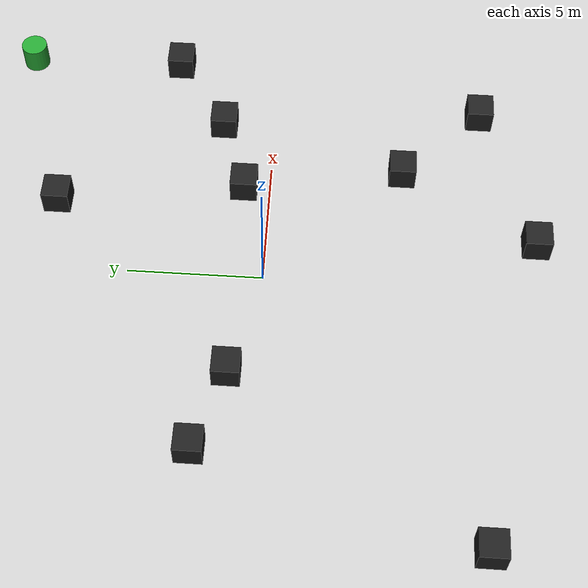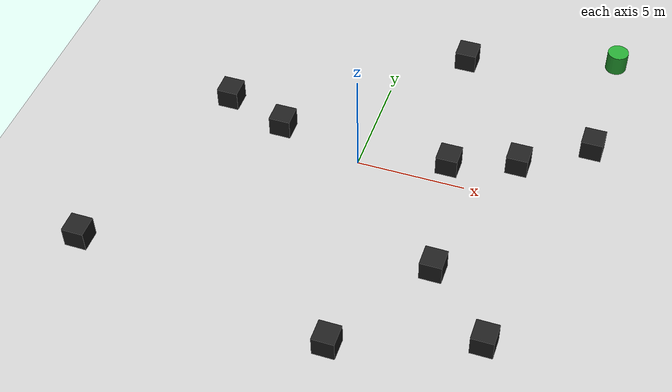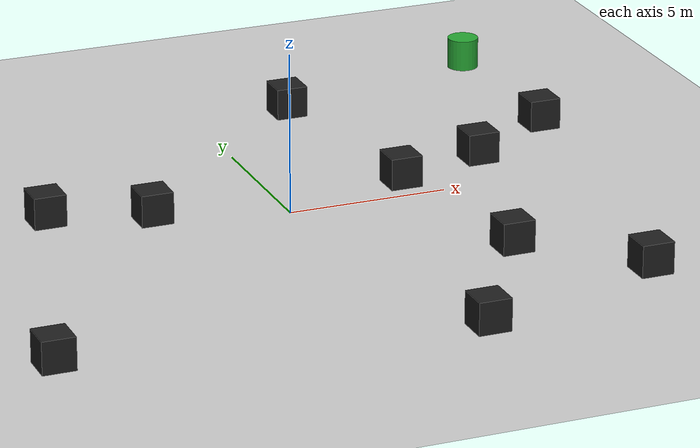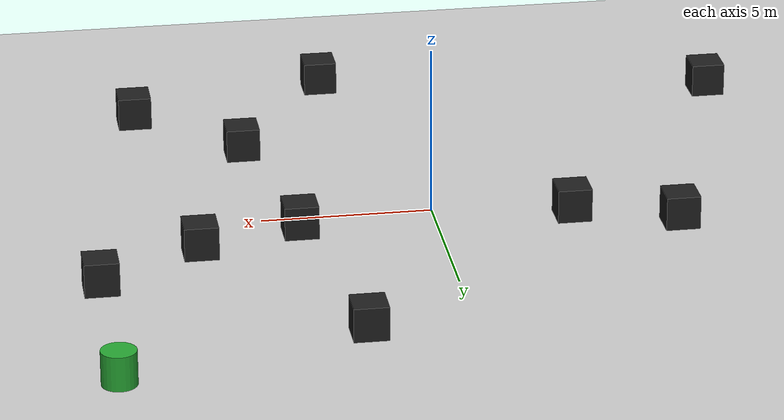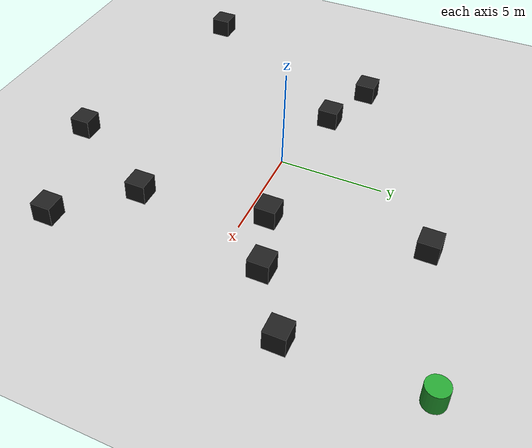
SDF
<?xml version="1.0"?>
<sdf version="1.4">
    <world name="default">
        <!-- A global light source -->
        <light name='sun' type='directional'>
            <cast_shadows>1</cast_shadows>
            <pose>0 0 10 0 -0 0</pose>
            <diffuse>0.8 0.8 0.8 1</diffuse>
            <specular>0.2 0.2 0.2 1</specular>
            <attenuation>
                <range>1000</range>
                <constant>0.9</constant>
                <linear>0.01</linear>
                <quadratic>0.001</quadratic>
            </attenuation>
            <direction>-0.5 0.1 -0.9</direction>
            <spot>
                <inner_angle>0</inner_angle>
                <outer_angle>0</outer_angle>
                <falloff>0</falloff>
            </spot>
        </light>
        <!-- A ground plane -->
        <model name='ground_plane'>
            <static>1</static>
            <link name='link'>
                <collision name='collision'>
                    <geometry>
                        <plane>
                            <normal>0 0 1</normal>
                            <size>100 100</size>
                        </plane>
                    </geometry>
                    <surface>
                        <contact>
                            <collide_bitmask>65535</collide_bitmask>
                            <ode />
                        </contact>
                        <friction>
                            <ode>
                                <mu>100</mu>
                                <mu2>50</mu2>
                            </ode>
                            <torsional>
                                <ode />
                            </torsional>
                        </friction>
                        <bounce />
                    </surface>
                    <max_contacts>10</max_contacts>
                </collision>
                <visual name='visual'>
                    <cast_shadows>0</cast_shadows>
                    <geometry>
                        <plane>
                            <normal>0 0 1</normal>
                            <size>100 100</size>
                        </plane>
                    </geometry>
                    <material>
                        <script>
                            <uri>file://media/materials/scripts/gazebo.material</uri>
                            <name>Gazebo/Grey</name>
                        </script>
                    </material>
                </visual>
                <self_collide>0</self_collide>
                <enable_wind>0</enable_wind>
                <kinematic>0</kinematic>
            </link>
        </model>
        <!-- Own physics settings to speed up simulation -->
        <gravity>0 0 -9.8</gravity>
        <magnetic_field>6e-06 2.3e-05 -4.2e-05</magnetic_field>
        <atmosphere type='adiabatic' />
        <physics type='ode'>
            <max_step_size>0.001</max_step_size>
            <real_time_factor>1</real_time_factor>
            <real_time_update_rate>1000</real_time_update_rate>
        </physics>

        <model name='obs0'>
            <pose>4 1 0.5 0 -0 0</pose>
            <link name='link'>
                <inertial>
                    <mass>1.0</mass>
                    <inertia>
                        <ixx>0.166667</ixx>
                        <ixy>0</ixy>
                        <ixz>0</ixz>
                        <iyy>0.166667</iyy>
                        <iyz>0</iyz>
                        <izz>0.166667</izz>
                    </inertia>
                    <pose>0 0 0 0 -0 0</pose>
                </inertial>
                <collision name='collision'>
                    <geometry>
                        <box>
                            <size>1 1 1</size>
                        </box>
                    </geometry>
                    <surface>
                        <contact>
                            <ode />
                        </contact>
                        <bounce />
                        <friction>
                            <torsional>
                                <ode />
                            </torsional>
                            <ode />
                        </friction>
                    </surface>
                    <max_contacts>10</max_contacts>
                </collision>
                <visual name='visual'>
                    <geometry>
                        <box>
                            <size>1 1 1</size>
                        </box>
                    </geometry>
                    <material>
                        <script>
                            <uri>file://media/materials/scripts/gazebo.material</uri>
                            <name>Gazebo/Black</name>
                        </script>
                    </material>
                </visual>
                <velocity_decay>
                    <linear>0</linear>
                    <angular>0</angular>
                </velocity_decay>
                <self_collide>0</self_collide>
                <enable_wind>0</enable_wind>
                <kinematic>0</kinematic>
            </link>
            <static>0</static>
        </model>

        <model name='obs1'>
            <pose>-4 1 0.5 0 -0 0</pose>
            <link name='link'>
                <inertial>
                    <mass>1.0</mass>
                    <inertia>
                        <ixx>0.166667</ixx>
                        <ixy>0</ixy>
                        <ixz>0</ixz>
                        <iyy>0.166667</iyy>
                        <iyz>0</iyz>
                        <izz>0.166667</izz>
                    </inertia>
                    <pose>0 0 0 0 -0 0</pose>
                </inertial>
                <collision name='collision'>
                    <geometry>
                        <box>
                            <size>1 1 1</size>
                        </box>
                    </geometry>
                    <surface>
                        <contact>
                            <ode />
                        </contact>
                        <bounce />
                        <friction>
                            <torsional>
                                <ode />
                            </torsional>
                            <ode />
                        </friction>
                    </surface>
                    <max_contacts>10</max_contacts>
                </collision>
                <visual name='visual'>
                    <geometry>
                        <box>
                            <size>1 1 1</size>
                        </box>
                    </geometry>
                    <material>
                        <script>
                            <uri>file://media/materials/scripts/gazebo.material</uri>
                            <name>Gazebo/Black</name>
                        </script>
                    </material>
                </visual>
                <velocity_decay>
                    <linear>0</linear>
                    <angular>0</angular>
                </velocity_decay>
                <self_collide>0</self_collide>
                <enable_wind>0</enable_wind>
                <kinematic>0</kinematic>
            </link>
            <static>0</static>
        </model>

        <model name='obs2'>
            <pose>-10 -8 0.5 0 -0 0</pose>
            <link name='link'>
                <inertial>
                    <mass>1.0</mass>
                    <inertia>
                        <ixx>0.166667</ixx>
                        <ixy>0</ixy>
                        <ixz>0</ixz>
                        <iyy>0.166667</iyy>
                        <iyz>0</iyz>
                        <izz>0.166667</izz>
                    </inertia>
                    <pose>0 0 0 0 -0 0</pose>
                </inertial>
                <collision name='collision'>
                    <geometry>
                        <box>
                            <size>1 1 1</size>
                        </box>
                    </geometry>
                    <surface>
                        <contact>
                            <ode />
                        </contact>
                        <bounce />
                        <friction>
                            <torsional>
                                <ode />
                            </torsional>
                            <ode />
                        </friction>
                    </surface>
                    <max_contacts>10</max_contacts>
                </collision>
                <visual name='visual'>
                    <geometry>
                        <box>
                            <size>1 1 1</size>
                        </box>
                    </geometry>
                    <material>
                        <script>
                            <uri>file://media/materials/scripts/gazebo.material</uri>
                            <name>Gazebo/Black</name>
                        </script>
                    </material>
                </visual>
                <velocity_decay>
                    <linear>0</linear>
                    <angular>0</angular>
                </velocity_decay>
                <self_collide>0</self_collide>
                <enable_wind>0</enable_wind>
                <kinematic>0</kinematic>
            </link>
            <static>0</static>
        </model>

        <model name='obs3'>
            <pose>10 4 0.5 0 -0 0</pose>
            <link name='link'>
                <inertial>
                    <mass>1.0</mass>
                    <inertia>
                        <ixx>0.166667</ixx>
                        <ixy>0</ixy>
                        <ixz>0</ixz>
                        <iyy>0.166667</iyy>
                        <iyz>0</iyz>
                        <izz>0.166667</izz>
                    </inertia>
                    <pose>0 0 0 0 -0 0</pose>
                </inertial>
                <collision name='collision'>
                    <geometry>
                        <box>
                            <size>1 1 1</size>
                        </box>
                    </geometry>
                    <surface>
                        <contact>
                            <ode />
                        </contact>
                        <bounce />
                        <friction>
                            <torsional>
                                <ode />
                            </torsional>
                            <ode />
                        </friction>
                    </surface>
                    <max_contacts>10</max_contacts>
                </collision>
                <visual name='visual'>
                    <geometry>
                        <box>
                            <size>1 1 1</size>
                        </box>
                    </geometry>
                    <material>
                        <script>
                            <uri>file://media/materials/scripts/gazebo.material</uri>
                            <name>Gazebo/Black</name>
                        </script>
                    </material>
                </visual>
                <velocity_decay>
                    <linear>0</linear>
                    <angular>0</angular>
                </velocity_decay>
                <self_collide>0</self_collide>
                <enable_wind>0</enable_wind>
                <kinematic>0</kinematic>
            </link>
            <static>0</static>
        </model>

        <model name='obs4'>
            <pose>7 2 0.5 0 -0 0</pose>
            <link name='link'>
                <inertial>
                    <mass>1.0</mass>
                    <inertia>
                        <ixx>0.166667</ixx>
                        <ixy>0</ixy>
                        <ixz>0</ixz>
                        <iyy>0.166667</iyy>
                        <iyz>0</iyz>
                        <izz>0.166667</izz>
                    </inertia>
                    <pose>0 0 0 0 -0 0</pose>
                </inertial>
                <collision name='collision'>
                    <geometry>
                        <box>
                            <size>1 1 1</size>
                        </box>
                    </geometry>
                    <surface>
                        <contact>
                            <ode />
                        </contact>
                        <bounce />
                        <friction>
                            <torsional>
                                <ode />
                            </torsional>
                            <ode />
                        </friction>
                    </surface>
                    <max_contacts>10</max_contacts>
                </collision>
                <visual name='visual'>
                    <geometry>
                        <box>
                            <size>1 1 1</size>
                        </box>
                    </geometry>
                    <material>
                        <script>
                            <uri>file://media/materials/scripts/gazebo.material</uri>
                            <name>Gazebo/Black</name>
                        </script>
                    </material>
                </visual>
                <velocity_decay>
                    <linear>0</linear>
                    <angular>0</angular>
                </velocity_decay>
                <self_collide>0</self_collide>
                <enable_wind>0</enable_wind>
                <kinematic>0</kinematic>
            </link>
            <static>0</static>
        </model>

        <model name='obs5'>
            <pose>-7 2 0.5 0 -0 0</pose>
            <link name='link'>
                <inertial>
                    <mass>1.0</mass>
                    <inertia>
                        <ixx>0.166667</ixx>
                        <ixy>0</ixy>
                        <ixz>0</ixz>
                        <iyy>0.166667</iyy>
                        <iyz>0</iyz>
                        <izz>0.166667</izz>
                    </inertia>
                    <pose>0 0 0 0 -0 0</pose>
                </inertial>
                <collision name='collision'>
                    <geometry>
                        <box>
                            <size>1 1 1</size>
                        </box>
                    </geometry>
                    <surface>
                        <contact>
                            <ode />
                        </contact>
                        <bounce />
                        <friction>
                            <torsional>
                                <ode />
                            </torsional>
                            <ode />
                        </friction>
                    </surface>
                    <max_contacts>10</max_contacts>
                </collision>
                <visual name='visual'>
                    <geometry>
                        <box>
                            <size>1 1 1</size>
                        </box>
                    </geometry>
                    <material>
                        <script>
                            <uri>file://media/materials/scripts/gazebo.material</uri>
                            <name>Gazebo/Black</name>
                        </script>
                    </material>
                </visual>
                <velocity_decay>
                    <linear>0</linear>
                    <angular>0</angular>
                </velocity_decay>
                <self_collide>0</self_collide>
                <enable_wind>0</enable_wind>
                <kinematic>0</kinematic>
            </link>
            <static>0</static>
        </model>

        <model name='obs6'>
            <pose>8 -8 0.5 0 -0 0</pose>
            <link name='link'>
                <inertial>
                    <mass>1.0</mass>
                    <inertia>
                        <ixx>0.166667</ixx>
                        <ixy>0</ixy>
                        <ixz>0</ixz>
                        <iyy>0.166667</iyy>
                        <iyz>0</iyz>
                        <izz>0.166667</izz>
                    </inertia>
                    <pose>0 0 0 0 -0 0</pose>
                </inertial>
                <collision name='collision'>
                    <geometry>
                        <box>
                            <size>1 1 1</size>
                        </box>
                    </geometry>
                    <surface>
                        <contact>
                            <ode />
                        </contact>
                        <bounce />
                        <friction>
                            <torsional>
                                <ode />
                            </torsional>
                            <ode />
                        </friction>
                    </surface>
                    <max_contacts>10</max_contacts>
                </collision>
                <visual name='visual'>
                    <geometry>
                        <box>
                            <size>1 1 1</size>
                        </box>
                    </geometry>
                    <material>
                        <script>
                            <uri>file://media/materials/scripts/gazebo.material</uri>
                            <name>Gazebo/Black</name>
                        </script>
                    </material>
                </visual>
                <velocity_decay>
                    <linear>0</linear>
                    <angular>0</angular>
                </velocity_decay>
                <self_collide>0</self_collide>
                <enable_wind>0</enable_wind>
                <kinematic>0</kinematic>
            </link>
            <static>0</static>
        </model>

        <model name='obs7'>
            <pose>5 -5 0.5 0 -0 0</pose>
            <link name='link'>
                <inertial>
                    <mass>1.0</mass>
                    <inertia>
                        <ixx>0.166667</ixx>
                        <ixy>0</ixy>
                        <ixz>0</ixz>
                        <iyy>0.166667</iyy>
                        <iyz>0</iyz>
                        <izz>0.166667</izz>
                    </inertia>
                    <pose>0 0 0 0 -0 0</pose>
                </inertial>
                <collision name='collision'>
                    <geometry>
                        <box>
                            <size>1 1 1</size>
                        </box>
                    </geometry>
                    <surface>
                        <contact>
                            <ode />
                        </contact>
                        <bounce />
                        <friction>
                            <torsional>
                                <ode />
                            </torsional>
                            <ode />
                        </friction>
                    </surface>
                    <max_contacts>10</max_contacts>
                </collision>
                <visual name='visual'>
                    <geometry>
                        <box>
                            <size>1 1 1</size>
                        </box>
                    </geometry>
                    <material>
                        <script>
                            <uri>file://media/materials/scripts/gazebo.material</uri>
                            <name>Gazebo/Black</name>
                        </script>
                    </material>
                </visual>
                <velocity_decay>
                    <linear>0</linear>
                    <angular>0</angular>
                </velocity_decay>
                <self_collide>0</self_collide>
                <enable_wind>0</enable_wind>
                <kinematic>0</kinematic>
            </link>
            <static>0</static>
        </model>

        <model name='obs8'>
            <pose>2 -10 0.5 0 -0 0</pose>
            <link name='link'>
                <inertial>
                    <mass>1.0</mass>
                    <inertia>
                        <ixx>0.166667</ixx>
                        <ixy>0</ixy>
                        <ixz>0</ixz>
                        <iyy>0.166667</iyy>
                        <iyz>0</iyz>
                        <izz>0.166667</izz>
                    </inertia>
                    <pose>0 0 0 0 -0 0</pose>
                </inertial>
                <collision name='collision'>
                    <geometry>
                        <box>
                            <size>1 1 1</size>
                        </box>
                    </geometry>
                    <surface>
                        <contact>
                            <ode />
                        </contact>
                        <bounce />
                        <friction>
                            <torsional>
                                <ode />
                            </torsional>
                            <ode />
                        </friction>
                    </surface>
                    <max_contacts>10</max_contacts>
                </collision>
                <visual name='visual'>
                    <geometry>
                        <box>
                            <size>1 1 1</size>
                        </box>
                    </geometry>
                    <material>
                        <script>
                            <uri>file://media/materials/scripts/gazebo.material</uri>
                            <name>Gazebo/Black</name>
                        </script>
                    </material>
                </visual>
                <velocity_decay>
                    <linear>0</linear>
                    <angular>0</angular>
                </velocity_decay>
                <self_collide>0</self_collide>
                <enable_wind>0</enable_wind>
                <kinematic>0</kinematic>
            </link>
            <static>0</static>
        </model>

        <model name='obs9'>
            <pose>3 8 0.5 0 -0 0</pose>
            <link name='link'>
                <inertial>
                    <mass>1.0</mass>
                    <inertia>
                        <ixx>0.166667</ixx>
                        <ixy>0</ixy>
                        <ixz>0</ixz>
                        <iyy>0.166667</iyy>
                        <iyz>0</iyz>
                        <izz>0.166667</izz>
                    </inertia>
                    <pose>0 0 0 0 -0 0</pose>
                </inertial>
                <collision name='collision'>
                    <geometry>
                        <box>
                            <size>1 1 1</size>
                        </box>
                    </geometry>
                    <surface>
                        <contact>
                            <ode />
                        </contact>
                        <bounce />
                        <friction>
                            <torsional>
                                <ode />
                            </torsional>
                            <ode />
                        </friction>
                    </surface>
                    <max_contacts>10</max_contacts>
                </collision>
                <visual name='visual'>
                    <geometry>
                        <box>
                            <size>1 1 1</size>
                        </box>
                    </geometry>
                    <material>
                        <script>
                            <uri>file://media/materials/scripts/gazebo.material</uri>
                            <name>Gazebo/Black</name>
                        </script>
                    </material>
                </visual>
                <velocity_decay>
                    <linear>0</linear>
                    <angular>0</angular>
                </velocity_decay>
                <self_collide>0</self_collide>
                <enable_wind>0</enable_wind>
                <kinematic>0</kinematic>
            </link>
            <static>0</static>
        </model>

        <model name='point_goal'>
            <pose>10 10 0.5 0 0 0</pose>
            <link name='link'>
                <inertial>
                    <mass>1</mass>
                    <inertia>
                        <ixx>0.145833</ixx>
                        <ixy>0</ixy>
                        <ixz>0</ixz>
                        <iyy>0.145833</iyy>
                        <iyz>0</iyz>
                        <izz>0.125</izz>
                    </inertia>
                    <pose>0 0 0 0 -0 0</pose>
                </inertial>
                <collision name='collision'>
                    <geometry>
                        <cylinder>
                            <radius>0.5</radius>
                            <length>1.0</length>
                        </cylinder>
                    </geometry>
                    <surface>
                        <contact>
                            <ode />
                        </contact>
                        <bounce />
                        <friction>
                            <torsional>
                                <ode />
                            </torsional>
                            <ode />
                        </friction>
                    </surface>
                    <max_contacts>10</max_contacts>
                </collision>
                <visual name='visual'>
                    <geometry>
                        <cylinder>
                            <radius>0.5</radius>
                            <length>1.0</length>
                        </cylinder>
                    </geometry>
                    <material>
                        <script>
                            <uri>file://media/materials/scripts/gazebo.material</uri>
                            <name>Gazebo/Green</name>
                        </script>
                    </material>
                </visual>
                <velocity_decay>
                    <linear>0</linear>
                    <angular>0</angular>
                </velocity_decay>
                <self_collide>0</self_collide>
                <enable_wind>0</enable_wind>
                <kinematic>0</kinematic>
            </link>
        </model>
    </world>
</sdf>
